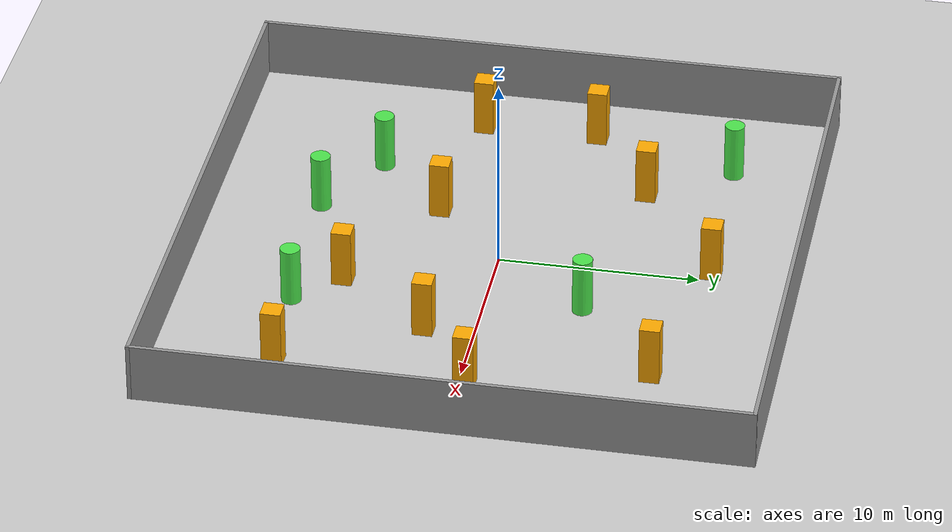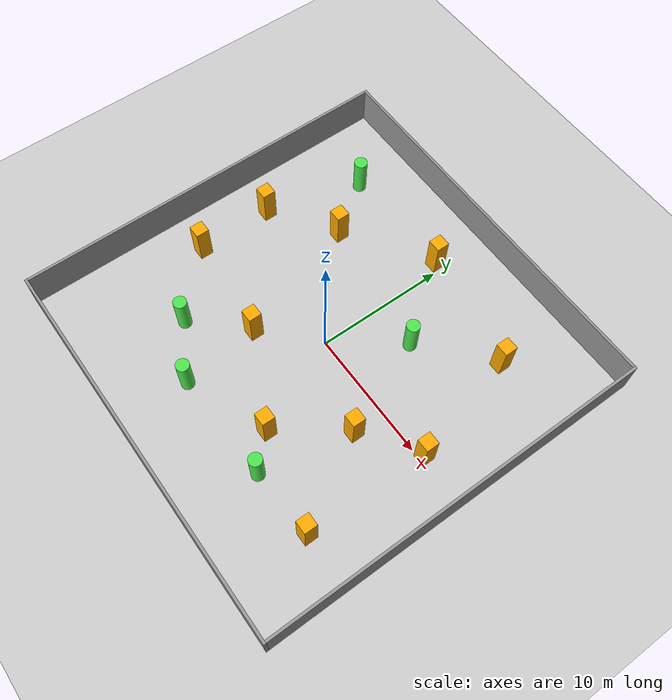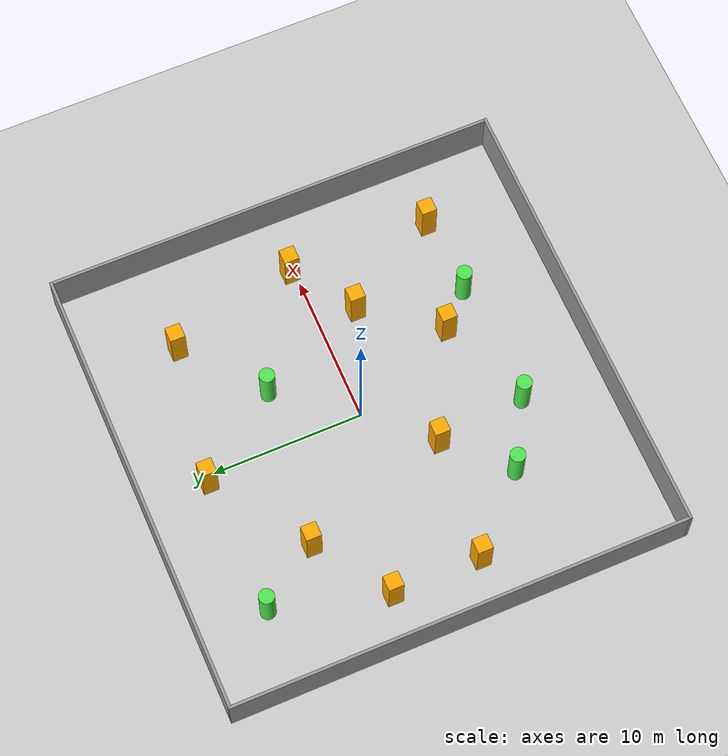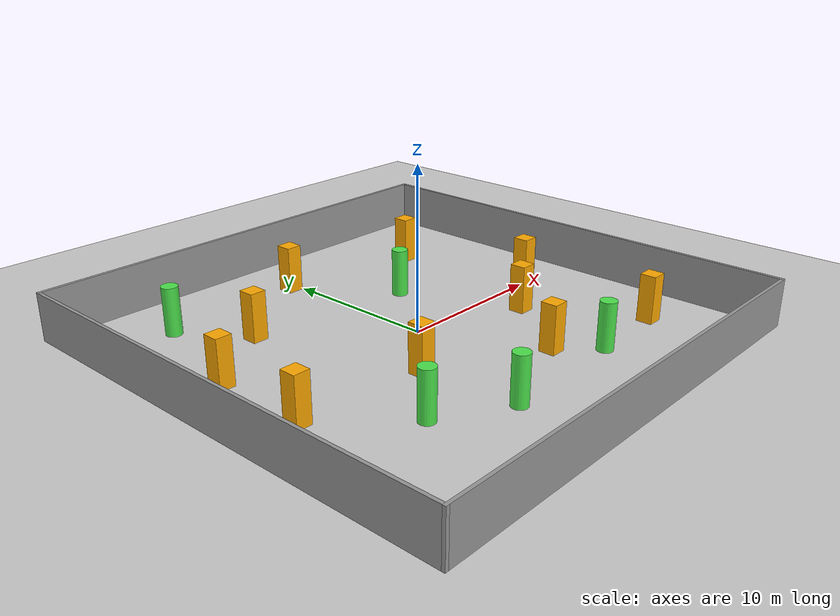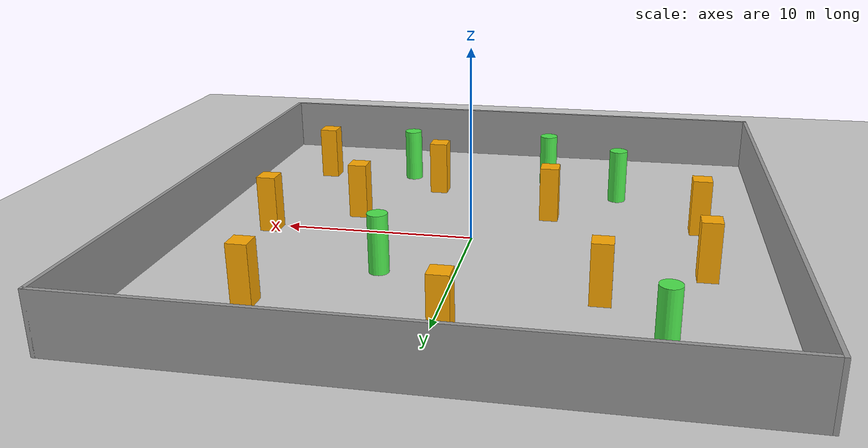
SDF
<sdf version="1.7">
 <world name="default">
  <light name="sun" type="directional">
   <pose>0 0 10 0 -0 0</pose>
   <diffuse>0.8 0.8 0.8 1</diffuse>
   <specular>0.2 0.2 0.2 1</specular>
   <attenuation>
    <range>1000</range>
    <constant>0.9</constant>
    <linear>0.01</linear>
    <quadratic>0.001</quadratic>
   </attenuation>
   <direction>-0.05 0.05 -0.9</direction>
   <spot><inner_angle>0</inner_angle><outer_angle>0</outer_angle><falloff>0</falloff></spot>
  </light>
  <model name="ground_plane">
   <static>1</static>
   <link name="link">
    <collision name="collision">
     <geometry><plane><normal>0 0 1</normal><size>100 100</size></plane></geometry>
     <surface>
      <contact><collide_bitmask>65535</collide_bitmask></contact>
      <friction><ode><mu>100</mu><mu2>50</mu2></ode></friction>
     </surface>
    </collision>
    <visual name="visual">
     <cast_shadows>0</cast_shadows>
     <geometry><plane><normal>0 0 1</normal><size>100 100</size></plane></geometry>
     <material>
      <script><uri>file://media/materials/scripts/gazebo.material</uri><name>Gazebo/Grey</name></script>
     </material>
    </visual>
   </link>
  </model>
  <gravity>0 0 -9.8</gravity>
  <magnetic_field>6e-06 2.3e-05 -4.2e-05</magnetic_field>
  <atmosphere type="adiabatic"/>
  <physics type="ode">
   <max_step_size>0.001</max_step_size>
   <real_time_factor>1</real_time_factor>
   <real_time_update_rate>1000</real_time_update_rate>
  </physics>
  <scene><ambient>0.4 0.4 0.4 1</ambient><background>0.7 0.7 0.7 1</background><shadows>1</shadows></scene>
  <spherical_coordinates>
   <surface_model>EARTH_WGS84</surface_model>
   <latitude_deg>0</latitude_deg>
   <longitude_deg>0</longitude_deg>
   <elevation>0</elevation>
   <heading_deg>0</heading_deg>
  </spherical_coordinates>
  <model name="Pillar_1x3">
   <link name="link_0">
    <inertial>
     <mass>1</mass>
     <inertia><ixx>0.145833</ixx><ixy>0</ixy><ixz>0</ixz><iyy>0.145833</iyy><iyz>0</iyz><izz>0.125</izz></inertia>
    </inertial>
    <pose>0 0 1.5 0 -0 0</pose>
    <kinematic>1</kinematic>
    <visual name="visual">
     <geometry><cylinder><radius>0.5</radius><length>3</length></cylinder></geometry>
     <material>
      <lighting>1</lighting>
      <script><uri>file://media/materials/scripts/gazebo.material</uri><name>Gazebo/Grey</name></script>
      <shader type="pixel"><normal_map>__default__</normal_map></shader>
      <ambient>0.3 0.9 0.3 1</ambient>
      <diffuse>0.7 0.7 0.7 1</diffuse>
      <specular>0.01 0.01 0.01 1</specular>
      <emissive>0 0 0 1</emissive>
     </material>
    </visual>
    <collision name="collision">
     <geometry><cylinder><radius>0.5</radius><length>3</length></cylinder></geometry>
     <surface>
      <friction>
       <ode><mu>1</mu><mu2>1</mu2><fdir1>0 0 0</fdir1><slip1>0</slip1><slip2>0</slip2></ode>
       <torsional>
        <coefficient>1</coefficient>
        <patch_radius>0</patch_radius>
        <surface_radius>0</surface_radius>
        <use_patch_radius>1</use_patch_radius>
        <ode><slip>0</slip></ode>
       </torsional>
      </friction>
      <bounce><restitution_coefficient>0</restitution_coefficient><threshold>1e+06</threshold></bounce>
      <contact>
       <collide_without_contact>0</collide_without_contact>
       <collide_without_contact_bitmask>1</collide_without_contact_bitmask>
       <collide_bitmask>1</collide_bitmask>
       <ode>
        <soft_cfm>0</soft_cfm>
        <soft_erp>0.2</soft_erp>
        <kp>1e+13</kp>
        <kd>1</kd>
        <max_vel>0.01</max_vel>
        <min_depth>0</min_depth>
       </ode>
       <bullet>
        <split_impulse>1</split_impulse>
        <split_impulse_penetration_threshold>-0.01</split_impulse_penetration_threshold>
        <soft_cfm>0</soft_cfm>
        <soft_erp>0.2</soft_erp>
        <kp>1e+13</kp>
        <kd>1</kd>
       </bullet>
      </contact>
     </surface>
    </collision>
   </link>
   <static>0</static>
   <pose>5.29199 -9.35902 0 0 -0 0</pose>
  </model>
  <model name="Pillar_1x3_clone">
   <link name="link_0">
    <inertial>
     <mass>1</mass>
     <inertia><ixx>0.145833</ixx><ixy>0</ixy><ixz>0</ixz><iyy>0.145833</iyy><iyz>0</iyz><izz>0.125</izz></inertia>
    </inertial>
    <pose>0 0 1.5 0 -0 0</pose>
    <kinematic>1</kinematic>
    <visual name="visual">
     <geometry><cylinder><radius>0.5</radius><length>3</length></cylinder></geometry>
     <material>
      <lighting>1</lighting>
      <script><uri>file://media/materials/scripts/gazebo.material</uri><name>Gazebo/Grey</name></script>
      <shader type="pixel"><normal_map>__default__</normal_map></shader>
      <ambient>0.3 0.9 0.3 1</ambient>
      <diffuse>0.7 0.7 0.7 1</diffuse>
      <specular>0.01 0.01 0.01 1</specular>
      <emissive>0 0 0 1</emissive>
     </material>
    </visual>
    <collision name="collision">
     <geometry><cylinder><radius>0.5</radius><length>3</length></cylinder></geometry>
     <surface>
      <friction>
       <ode><mu>1</mu><mu2>1</mu2><fdir1>0 0 0</fdir1><slip1>0</slip1><slip2>0</slip2></ode>
       <torsional>
        <coefficient>1</coefficient>
        <patch_radius>0</patch_radius>
        <surface_radius>0</surface_radius>
        <use_patch_radius>1</use_patch_radius>
        <ode><slip>0</slip></ode>
       </torsional>
      </friction>
      <bounce><restitution_coefficient>0</restitution_coefficient><threshold>1e+06</threshold></bounce>
      <contact>
       <collide_without_contact>0</collide_without_contact>
       <collide_without_contact_bitmask>1</collide_without_contact_bitmask>
       <collide_bitmask>1</collide_bitmask>
       <ode>
        <soft_cfm>0</soft_cfm>
        <soft_erp>0.2</soft_erp>
        <kp>1e+13</kp>
        <kd>1</kd>
        <max_vel>0.01</max_vel>
        <min_depth>0</min_depth>
       </ode>
       <bullet>
        <split_impulse>1</split_impulse>
        <split_impulse_penetration_threshold>-0.01</split_impulse_penetration_threshold>
        <soft_cfm>0</soft_cfm>
        <soft_erp>0.2</soft_erp>
        <kp>1e+13</kp>
        <kd>1</kd>
       </bullet>
      </contact>
     </surface>
    </collision>
   </link>
   <static>0</static>
   <pose>-7.33451 -7.2529 0 0 -0 0</pose>
  </model>
  <model name="Pillar_1x3_clone_0">
   <link name="link_0">
    <inertial>
     <mass>1</mass>
     <inertia><ixx>0.145833</ixx><ixy>0</ixy><ixz>0</ixz><iyy>0.145833</iyy><iyz>0</iyz><izz>0.125</izz></inertia>
    </inertial>
    <pose>0 0 1.5 0 -0 0</pose>
    <kinematic>1</kinematic>
    <visual name="visual">
     <geometry><cylinder><radius>0.5</radius><length>3</length></cylinder></geometry>
     <material>
      <lighting>1</lighting>
      <script><uri>file://media/materials/scripts/gazebo.material</uri><name>Gazebo/Grey</name></script>
      <shader type="pixel"><normal_map>__default__</normal_map></shader>
      <ambient>0.3 0.9 0.3 1</ambient>
      <diffuse>0.7 0.7 0.7 1</diffuse>
      <specular>0.01 0.01 0.01 1</specular>
      <emissive>0 0 0 1</emissive>
     </material>
    </visual>
    <collision name="collision">
     <geometry><cylinder><radius>0.5</radius><length>3</length></cylinder></geometry>
     <surface>
      <friction>
       <ode><mu>1</mu><mu2>1</mu2><fdir1>0 0 0</fdir1><slip1>0</slip1><slip2>0</slip2></ode>
       <torsional>
        <coefficient>1</coefficient>
        <patch_radius>0</patch_radius>
        <surface_radius>0</surface_radius>
        <use_patch_radius>1</use_patch_radius>
        <ode><slip>0</slip></ode>
       </torsional>
      </friction>
      <bounce><restitution_coefficient>0</restitution_coefficient><threshold>1e+06</threshold></bounce>
      <contact>
       <collide_without_contact>0</collide_without_contact>
       <collide_without_contact_bitmask>1</collide_without_contact_bitmask>
       <collide_bitmask>1</collide_bitmask>
       <ode>
        <soft_cfm>0</soft_cfm>
        <soft_erp>0.2</soft_erp>
        <kp>1e+13</kp>
        <kd>1</kd>
        <max_vel>0.01</max_vel>
        <min_depth>0</min_depth>
       </ode>
       <bullet>
        <split_impulse>1</split_impulse>
        <split_impulse_penetration_threshold>-0.01</split_impulse_penetration_threshold>
        <soft_cfm>0</soft_cfm>
        <soft_erp>0.2</soft_erp>
        <kp>1e+13</kp>
        <kd>1</kd>
       </bullet>
      </contact>
     </surface>
    </collision>
   </link>
   <static>0</static>
   <pose>-3.09344 -9.64731 0 0 -0 0</pose>
  </model>
  <model name="Pillar_1x3_clone_1">
   <link name="link_0">
    <inertial>
     <mass>1</mass>
     <inertia><ixx>0.145833</ixx><ixy>0</ixy><ixz>0</ixz><iyy>0.145833</iyy><iyz>0</iyz><izz>0.125</izz></inertia>
    </inertial>
    <pose>0 0 1.5 0 -0 0</pose>
    <kinematic>1</kinematic>
    <visual name="visual">
     <geometry><cylinder><radius>0.5</radius><length>3</length></cylinder></geometry>
     <material>
      <lighting>1</lighting>
      <script><uri>file://media/materials/scripts/gazebo.material</uri><name>Gazebo/Grey</name></script>
      <shader type="pixel"><normal_map>__default__</normal_map></shader>
      <ambient>0.3 0.9 0.3 1</ambient>
      <diffuse>0.7 0.7 0.7 1</diffuse>
      <specular>0.01 0.01 0.01 1</specular>
      <emissive>0 0 0 1</emissive>
     </material>
    </visual>
    <collision name="collision">
     <geometry><cylinder><radius>0.5</radius><length>3</length></cylinder></geometry>
     <surface>
      <friction>
       <ode><mu>1</mu><mu2>1</mu2><fdir1>0 0 0</fdir1><slip1>0</slip1><slip2>0</slip2></ode>
       <torsional>
        <coefficient>1</coefficient>
        <patch_radius>0</patch_radius>
        <surface_radius>0</surface_radius>
        <use_patch_radius>1</use_patch_radius>
        <ode><slip>0</slip></ode>
       </torsional>
      </friction>
      <bounce><restitution_coefficient>0</restitution_coefficient><threshold>1e+06</threshold></bounce>
      <contact>
       <collide_without_contact>0</collide_without_contact>
       <collide_without_contact_bitmask>1</collide_without_contact_bitmask>
       <collide_bitmask>1</collide_bitmask>
       <ode>
        <soft_cfm>0</soft_cfm>
        <soft_erp>0.2</soft_erp>
        <kp>1e+13</kp>
        <kd>1</kd>
        <max_vel>0.01</max_vel>
        <min_depth>0</min_depth>
       </ode>
       <bullet>
        <split_impulse>1</split_impulse>
        <split_impulse_penetration_threshold>-0.01</split_impulse_penetration_threshold>
        <soft_cfm>0</soft_cfm>
        <soft_erp>0.2</soft_erp>
        <kp>1e+13</kp>
        <kd>1</kd>
       </bullet>
      </contact>
     </surface>
    </collision>
   </link>
   <static>0</static>
   <pose>-9.69243 10.3073 0 0 -0 0</pose>
  </model>
  <model name="Pillar_1x3_clone_2">
   <link name="link_0">
    <inertial>
     <mass>1</mass>
     <inertia><ixx>0.145833</ixx><ixy>0</ixy><ixz>0</ixz><iyy>0.145833</iyy><iyz>0</iyz><izz>0.125</izz></inertia>
    </inertial>
    <pose>0 0 1.5 0 -0 0</pose>
    <kinematic>1</kinematic>
    <visual name="visual">
     <geometry><cylinder><radius>0.5</radius><length>3</length></cylinder></geometry>
     <material>
      <lighting>1</lighting>
      <script><uri>file://media/materials/scripts/gazebo.material</uri><name>Gazebo/Grey</name></script>
      <shader type="pixel"><normal_map>__default__</normal_map></shader>
      <ambient>0.3 0.9 0.3 1</ambient>
      <diffuse>0.7 0.7 0.7 1</diffuse>
      <specular>0.01 0.01 0.01 1</specular>
      <emissive>0 0 0 1</emissive>
     </material>
    </visual>
    <collision name="collision">
     <geometry><cylinder><radius>0.5</radius><length>3</length></cylinder></geometry>
     <surface>
      <friction>
       <ode><mu>1</mu><mu2>1</mu2><fdir1>0 0 0</fdir1><slip1>0</slip1><slip2>0</slip2></ode>
       <torsional>
        <coefficient>1</coefficient>
        <patch_radius>0</patch_radius>
        <surface_radius>0</surface_radius>
        <use_patch_radius>1</use_patch_radius>
        <ode><slip>0</slip></ode>
       </torsional>
      </friction>
      <bounce><restitution_coefficient>0</restitution_coefficient><threshold>1e+06</threshold></bounce>
      <contact>
       <collide_without_contact>0</collide_without_contact>
       <collide_without_contact_bitmask>1</collide_without_contact_bitmask>
       <collide_bitmask>1</collide_bitmask>
       <ode>
        <soft_cfm>0</soft_cfm>
        <soft_erp>0.2</soft_erp>
        <kp>1e+13</kp>
        <kd>1</kd>
        <max_vel>0.01</max_vel>
        <min_depth>0</min_depth>
       </ode>
       <bullet>
        <split_impulse>1</split_impulse>
        <split_impulse_penetration_threshold>-0.01</split_impulse_penetration_threshold>
        <soft_cfm>0</soft_cfm>
        <soft_erp>0.2</soft_erp>
        <kp>1e+13</kp>
        <kd>1</kd>
       </bullet>
      </contact>
     </surface>
    </collision>
   </link>
   <static>0</static>
   <pose>3.6287 4.8141 0 0 -0 0</pose>
  </model>
  <model name="Fence30">
   <pose>-0.170481 -0.124416 0 0 -0 0</pose>
   <link name="Wall_0">
    <collision name="Wall_0_Collision">
     <geometry><box><size>30.2 0.2 3</size></box></geometry>
     <pose>0 0 1.5 0 -0 0</pose>
    </collision>
    <visual name="Wall_0_Visual">
     <pose>0 0 1.5 0 -0 0</pose>
     <geometry><box><size>30.2 0.2 3</size></box></geometry>
     <material>
      <script><uri>file://media/materials/scripts/gazebo.material</uri><name>Gazebo/Grey</name></script>
      <ambient>1 1 1 1</ambient>
     </material>
     <meta><layer>0</layer></meta>
    </visual>
    <pose>0 -15 0 0 -0 3.14159</pose>
   </link>
   <link name="Wall_1">
    <collision name="Wall_1_Collision">
     <geometry><box><size>30.2 0.2 3</size></box></geometry>
     <pose>0 0 1.5 0 -0 0</pose>
    </collision>
    <visual name="Wall_1_Visual">
     <pose>0 0 1.5 0 -0 0</pose>
     <geometry><box><size>30.2 0.2 3</size></box></geometry>
     <material>
      <script><uri>file://media/materials/scripts/gazebo.material</uri><name>Gazebo/Grey</name></script>
      <ambient>1 1 1 1</ambient>
     </material>
     <meta><layer>0</layer></meta>
    </visual>
    <pose>-15 0 0 0 -0 1.5708</pose>
   </link>
   <link name="Wall_2">
    <collision name="Wall_2_Collision">
     <geometry><box><size>30.2 0.2 3</size></box></geometry>
     <pose>0 0 1.5 0 -0 0</pose>
    </collision>
    <visual name="Wall_2_Visual">
     <pose>0 0 1.5 0 -0 0</pose>
     <geometry><box><size>30.2 0.2 3</size></box></geometry>
     <material>
      <script><uri>file://media/materials/scripts/gazebo.material</uri><name>Gazebo/Grey</name></script>
      <ambient>1 1 1 1</ambient>
     </material>
     <meta><layer>0</layer></meta>
    </visual>
    <pose>0 15 0 0 -0 0</pose>
   </link>
   <link name="Wall_3">
    <collision name="Wall_3_Collision">
     <geometry><box><size>30.2 0.2 3</size></box></geometry>
     <pose>0 0 1.5 0 -0 0</pose>
    </collision>
    <visual name="Wall_3_Visual">
     <pose>0 0 1.5 0 -0 0</pose>
     <geometry><box><size>30.2 0.2 3</size></box></geometry>
     <material>
      <script><uri>file://media/materials/scripts/gazebo.material</uri><name>Gazebo/Grey</name></script>
      <ambient>1 1 1 1</ambient>
     </material>
     <meta><layer>0</layer></meta>
    </visual>
    <pose>15 0 0 0 -0 -1.5708</pose>
   </link>
   <static>1</static>
  </model>
  <model name="Box1x1x3">
   <link name="link_0">
    <inertial>
     <mass>1</mass>
     <inertia>
      <ixx>0.166667</ixx>
      <ixy>0</ixy>
      <ixz>0</ixz>
      <iyy>0.166667</iyy>
      <iyz>0</iyz>
      <izz>0.166667</izz>
     </inertia>
    </inertial>
    <pose>0 0 1.5 0 -0 0</pose>
    <kinematic>1</kinematic>
    <visual name="visual">
     <geometry><box><size>1 1 3</size></box></geometry>
     <material>
      <lighting>1</lighting>
      <script><uri>file://media/materials/scripts/gazebo.material</uri><name>Gazebo/Grey</name></script>
      <shader type="pixel"><normal_map>__default__</normal_map></shader>
      <ambient>1 0.667 0 1</ambient>
      <diffuse>0.7 0.7 0.7 1</diffuse>
      <specular>0.01 0.01 0.01 1</specular>
      <emissive>0 0 0 1</emissive>
     </material>
    </visual>
    <collision name="collision">
     <geometry><box><size>1 1 3</size></box></geometry>
     <surface>
      <friction>
       <ode><mu>1</mu><mu2>1</mu2><fdir1>0 0 0</fdir1><slip1>0</slip1><slip2>0</slip2></ode>
       <torsional>
        <coefficient>1</coefficient>
        <patch_radius>0</patch_radius>
        <surface_radius>0</surface_radius>
        <use_patch_radius>1</use_patch_radius>
        <ode><slip>0</slip></ode>
       </torsional>
      </friction>
      <bounce><restitution_coefficient>0</restitution_coefficient><threshold>1e+06</threshold></bounce>
      <contact>
       <collide_without_contact>0</collide_without_contact>
       <collide_without_contact_bitmask>1</collide_without_contact_bitmask>
       <collide_bitmask>1</collide_bitmask>
       <ode>
        <soft_cfm>0</soft_cfm>
        <soft_erp>0.2</soft_erp>
        <kp>1e+13</kp>
        <kd>1</kd>
        <max_vel>0.01</max_vel>
        <min_depth>0</min_depth>
       </ode>
       <bullet>
        <split_impulse>1</split_impulse>
        <split_impulse_penetration_threshold>-0.01</split_impulse_penetration_threshold>
        <soft_cfm>0</soft_cfm>
        <soft_erp>0.2</soft_erp>
        <kp>1e+13</kp>
        <kd>1</kd>
       </bullet>
      </contact>
     </surface>
    </collision>
   </link>
   <static>0</static>
   <pose>6.70589 -2.46473 0 0 -0 0</pose>
  </model>
  <model name="Box1x1x3_clone">
   <link name="link_0">
    <inertial>
     <mass>1</mass>
     <inertia>
      <ixx>0.166667</ixx>
      <ixy>0</ixy>
      <ixz>0</ixz>
      <iyy>0.166667</iyy>
      <iyz>0</iyz>
      <izz>0.166667</izz>
     </inertia>
    </inertial>
    <pose>0 0 1.5 0 -0 0</pose>
    <kinematic>1</kinematic>
    <visual name="visual">
     <geometry><box><size>1 1 3</size></box></geometry>
     <material>
      <lighting>1</lighting>
      <script><uri>file://media/materials/scripts/gazebo.material</uri><name>Gazebo/Grey</name></script>
      <shader type="pixel"><normal_map>__default__</normal_map></shader>
      <ambient>1 0.667 0 1</ambient>
      <diffuse>0.7 0.7 0.7 1</diffuse>
      <specular>0.01 0.01 0.01 1</specular>
      <emissive>0 0 0 1</emissive>
     </material>
    </visual>
    <collision name="collision">
     <geometry><box><size>1 1 3</size></box></geometry>
     <surface>
      <friction>
       <ode><mu>1</mu><mu2>1</mu2><fdir1>0 0 0</fdir1><slip1>0</slip1><slip2>0</slip2></ode>
       <torsional>
        <coefficient>1</coefficient>
        <patch_radius>0</patch_radius>
        <surface_radius>0</surface_radius>
        <use_patch_radius>1</use_patch_radius>
        <ode><slip>0</slip></ode>
       </torsional>
      </friction>
      <bounce><restitution_coefficient>0</restitution_coefficient><threshold>1e+06</threshold></bounce>
      <contact>
       <collide_without_contact>0</collide_without_contact>
       <collide_without_contact_bitmask>1</collide_without_contact_bitmask>
       <collide_bitmask>1</collide_bitmask>
       <ode>
        <soft_cfm>0</soft_cfm>
        <soft_erp>0.2</soft_erp>
        <kp>1e+13</kp>
        <kd>1</kd>
        <max_vel>0.01</max_vel>
        <min_depth>0</min_depth>
       </ode>
       <bullet>
        <split_impulse>1</split_impulse>
        <split_impulse_penetration_threshold>-0.01</split_impulse_penetration_threshold>
        <soft_cfm>0</soft_cfm>
        <soft_erp>0.2</soft_erp>
        <kp>1e+13</kp>
        <kd>1</kd>
       </bullet>
      </contact>
     </surface>
    </collision>
   </link>
   <static>0</static>
   <pose>-3.72685 -3.65201 0 0 -0 0</pose>
  </model>
  <model name="Box1x1x3_clone_0">
   <link name="link_0">
    <inertial>
     <mass>1</mass>
     <inertia>
      <ixx>0.166667</ixx>
      <ixy>0</ixy>
      <ixz>0</ixz>
      <iyy>0.166667</iyy>
      <iyz>0</iyz>
      <izz>0.166667</izz>
     </inertia>
    </inertial>
    <pose>0 0 1.5 0 -0 0</pose>
    <kinematic>1</kinematic>
    <visual name="visual">
     <geometry><box><size>1 1 3</size></box></geometry>
     <material>
      <lighting>1</lighting>
      <script><uri>file://media/materials/scripts/gazebo.material</uri><name>Gazebo/Grey</name></script>
      <shader type="pixel"><normal_map>__default__</normal_map></shader>
      <ambient>1 0.667 0 1</ambient>
      <diffuse>0.7 0.7 0.7 1</diffuse>
      <specular>0.01 0.01 0.01 1</specular>
      <emissive>0 0 0 1</emissive>
     </material>
    </visual>
    <collision name="collision">
     <geometry><box><size>1 1 3</size></box></geometry>
     <surface>
      <friction>
       <ode><mu>1</mu><mu2>1</mu2><fdir1>0 0 0</fdir1><slip1>0</slip1><slip2>0</slip2></ode>
       <torsional>
        <coefficient>1</coefficient>
        <patch_radius>0</patch_radius>
        <surface_radius>0</surface_radius>
        <use_patch_radius>1</use_patch_radius>
        <ode><slip>0</slip></ode>
       </torsional>
      </friction>
      <bounce><restitution_coefficient>0</restitution_coefficient><threshold>1e+06</threshold></bounce>
      <contact>
       <collide_without_contact>0</collide_without_contact>
       <collide_without_contact_bitmask>1</collide_without_contact_bitmask>
       <collide_bitmask>1</collide_bitmask>
       <ode>
        <soft_cfm>0</soft_cfm>
        <soft_erp>0.2</soft_erp>
        <kp>1e+13</kp>
        <kd>1</kd>
        <max_vel>0.01</max_vel>
        <min_depth>0</min_depth>
       </ode>
       <bullet>
        <split_impulse>1</split_impulse>
        <split_impulse_penetration_threshold>-0.01</split_impulse_penetration_threshold>
        <soft_cfm>0</soft_cfm>
        <soft_erp>0.2</soft_erp>
        <kp>1e+13</kp>
        <kd>1</kd>
       </bullet>
      </contact>
     </surface>
    </collision>
   </link>
   <static>0</static>
   <pose>-11.7465 -2.89077 0 0 -0 0</pose>
  </model>
  <model name="Box1x1x3_clone_1">
   <link name="link_0">
    <inertial>
     <mass>1</mass>
     <inertia>
      <ixx>0.166667</ixx>
      <ixy>0</ixy>
      <ixz>0</ixz>
      <iyy>0.166667</iyy>
      <iyz>0</iyz>
      <izz>0.166667</izz>
     </inertia>
    </inertial>
    <pose>0 0 1.5 0 -0 0</pose>
    <kinematic>1</kinematic>
    <visual name="visual">
     <geometry><box><size>1 1 3</size></box></geometry>
     <material>
      <lighting>1</lighting>
      <script><uri>file://media/materials/scripts/gazebo.material</uri><name>Gazebo/Grey</name></script>
      <shader type="pixel"><normal_map>__default__</normal_map></shader>
      <ambient>1 0.667 0 1</ambient>
      <diffuse>0.7 0.7 0.7 1</diffuse>
      <specular>0.01 0.01 0.01 1</specular>
      <emissive>0 0 0 1</emissive>
     </material>
    </visual>
    <collision name="collision">
     <geometry><box><size>1 1 3</size></box></geometry>
     <surface>
      <friction>
       <ode><mu>1</mu><mu2>1</mu2><fdir1>0 0 0</fdir1><slip1>0</slip1><slip2>0</slip2></ode>
       <torsional>
        <coefficient>1</coefficient>
        <patch_radius>0</patch_radius>
        <surface_radius>0</surface_radius>
        <use_patch_radius>1</use_patch_radius>
        <ode><slip>0</slip></ode>
       </torsional>
      </friction>
      <bounce><restitution_coefficient>0</restitution_coefficient><threshold>1e+06</threshold></bounce>
      <contact>
       <collide_without_contact>0</collide_without_contact>
       <collide_without_contact_bitmask>1</collide_without_contact_bitmask>
       <collide_bitmask>1</collide_bitmask>
       <ode>
        <soft_cfm>0</soft_cfm>
        <soft_erp>0.2</soft_erp>
        <kp>1e+13</kp>
        <kd>1</kd>
        <max_vel>0.01</max_vel>
        <min_depth>0</min_depth>
       </ode>
       <bullet>
        <split_impulse>1</split_impulse>
        <split_impulse_penetration_threshold>-0.01</split_impulse_penetration_threshold>
        <soft_cfm>0</soft_cfm>
        <soft_erp>0.2</soft_erp>
        <kp>1e+13</kp>
        <kd>1</kd>
       </bullet>
      </contact>
     </surface>
    </collision>
   </link>
   <static>0</static>
   <pose>-11.791 2.97732 0 0 -0 0</pose>
  </model>
  <model name="Box1x1x3_clone_2">
   <link name="link_0">
    <inertial>
     <mass>1</mass>
     <inertia>
      <ixx>0.166667</ixx>
      <ixy>0</ixy>
      <ixz>0</ixz>
      <iyy>0.166667</iyy>
      <iyz>0</iyz>
      <izz>0.166667</izz>
     </inertia>
    </inertial>
    <pose>0 0 1.5 0 -0 0</pose>
    <kinematic>1</kinematic>
    <visual name="visual">
     <geometry><box><size>1 1 3</size></box></geometry>
     <material>
      <lighting>1</lighting>
      <script><uri>file://media/materials/scripts/gazebo.material</uri><name>Gazebo/Grey</name></script>
      <shader type="pixel"><normal_map>__default__</normal_map></shader>
      <ambient>1 0.667 0 1</ambient>
      <diffuse>0.7 0.7 0.7 1</diffuse>
      <specular>0.01 0.01 0.01 1</specular>
      <emissive>0 0 0 1</emissive>
     </material>
    </visual>
    <collision name="collision">
     <geometry><box><size>1 1 3</size></box></geometry>
     <surface>
      <friction>
       <ode><mu>1</mu><mu2>1</mu2><fdir1>0 0 0</fdir1><slip1>0</slip1><slip2>0</slip2></ode>
       <torsional>
        <coefficient>1</coefficient>
        <patch_radius>0</patch_radius>
        <surface_radius>0</surface_radius>
        <use_patch_radius>1</use_patch_radius>
        <ode><slip>0</slip></ode>
       </torsional>
      </friction>
      <bounce><restitution_coefficient>0</restitution_coefficient><threshold>1e+06</threshold></bounce>
      <contact>
       <collide_without_contact>0</collide_without_contact>
       <collide_without_contact_bitmask>1</collide_without_contact_bitmask>
       <collide_bitmask>1</collide_bitmask>
       <ode>
        <soft_cfm>0</soft_cfm>
        <soft_erp>0.2</soft_erp>
        <kp>1e+13</kp>
        <kd>1</kd>
        <max_vel>0.01</max_vel>
        <min_depth>0</min_depth>
       </ode>
       <bullet>
        <split_impulse>1</split_impulse>
        <split_impulse_penetration_threshold>-0.01</split_impulse_penetration_threshold>
        <soft_cfm>0</soft_cfm>
        <soft_erp>0.2</soft_erp>
        <kp>1e+13</kp>
        <kd>1</kd>
       </bullet>
      </contact>
     </surface>
    </collision>
   </link>
   <static>0</static>
   <pose>-6.93116 6.27845 0 0 -0 0</pose>
  </model>
  <model name="Box1x1x3_clone_3">
   <link name="link_0">
    <inertial>
     <mass>1</mass>
     <inertia>
      <ixx>0.166667</ixx>
      <ixy>0</ixy>
      <ixz>0</ixz>
      <iyy>0.166667</iyy>
      <iyz>0</iyz>
      <izz>0.166667</izz>
     </inertia>
    </inertial>
    <pose>0 0 1.5 0 -0 0</pose>
    <kinematic>1</kinematic>
    <visual name="visual">
     <geometry><box><size>1 1 3</size></box></geometry>
     <material>
      <lighting>1</lighting>
      <script><uri>file://media/materials/scripts/gazebo.material</uri><name>Gazebo/Grey</name></script>
      <shader type="pixel"><normal_map>__default__</normal_map></shader>
      <ambient>1 0.667 0 1</ambient>
      <diffuse>0.7 0.7 0.7 1</diffuse>
      <specular>0.01 0.01 0.01 1</specular>
      <emissive>0 0 0 1</emissive>
     </material>
    </visual>
    <collision name="collision">
     <geometry><box><size>1 1 3</size></box></geometry>
     <surface>
      <friction>
       <ode><mu>1</mu><mu2>1</mu2><fdir1>0 0 0</fdir1><slip1>0</slip1><slip2>0</slip2></ode>
       <torsional>
        <coefficient>1</coefficient>
        <patch_radius>0</patch_radius>
        <surface_radius>0</surface_radius>
        <use_patch_radius>1</use_patch_radius>
        <ode><slip>0</slip></ode>
       </torsional>
      </friction>
      <bounce><restitution_coefficient>0</restitution_coefficient><threshold>1e+06</threshold></bounce>
      <contact>
       <collide_without_contact>0</collide_without_contact>
       <collide_without_contact_bitmask>1</collide_without_contact_bitmask>
       <collide_bitmask>1</collide_bitmask>
       <ode>
        <soft_cfm>0</soft_cfm>
        <soft_erp>0.2</soft_erp>
        <kp>1e+13</kp>
        <kd>1</kd>
        <max_vel>0.01</max_vel>
        <min_depth>0</min_depth>
       </ode>
       <bullet>
        <split_impulse>1</split_impulse>
        <split_impulse_penetration_threshold>-0.01</split_impulse_penetration_threshold>
        <soft_cfm>0</soft_cfm>
        <soft_erp>0.2</soft_erp>
        <kp>1e+13</kp>
        <kd>1</kd>
       </bullet>
      </contact>
     </surface>
    </collision>
   </link>
   <static>0</static>
   <pose>-0.591083 10.5417 0 0 -0 0</pose>
  </model>
  <model name="Box1x1x3_clone_4">
   <link name="link_0">
    <inertial>
     <mass>1</mass>
     <inertia>
      <ixx>0.166667</ixx>
      <ixy>0</ixy>
      <ixz>0</ixz>
      <iyy>0.166667</iyy>
      <iyz>0</iyz>
      <izz>0.166667</izz>
     </inertia>
    </inertial>
    <pose>0 0 1.5 0 -0 0</pose>
    <kinematic>1</kinematic>
    <visual name="visual">
     <geometry><box><size>1 1 3</size></box></geometry>
     <material>
      <lighting>1</lighting>
      <script><uri>file://media/materials/scripts/gazebo.material</uri><name>Gazebo/Grey</name></script>
      <shader type="pixel"><normal_map>__default__</normal_map></shader>
      <ambient>1 0.667 0 1</ambient>
      <diffuse>0.7 0.7 0.7 1</diffuse>
      <specular>0.01 0.01 0.01 1</specular>
      <emissive>0 0 0 1</emissive>
     </material>
    </visual>
    <collision name="collision">
     <geometry><box><size>1 1 3</size></box></geometry>
     <surface>
      <friction>
       <ode><mu>1</mu><mu2>1</mu2><fdir1>0 0 0</fdir1><slip1>0</slip1><slip2>0</slip2></ode>
       <torsional>
        <coefficient>1</coefficient>
        <patch_radius>0</patch_radius>
        <surface_radius>0</surface_radius>
        <use_patch_radius>1</use_patch_radius>
        <ode><slip>0</slip></ode>
       </torsional>
      </friction>
      <bounce><restitution_coefficient>0</restitution_coefficient><threshold>1e+06</threshold></bounce>
      <contact>
       <collide_without_contact>0</collide_without_contact>
       <collide_without_contact_bitmask>1</collide_without_contact_bitmask>
       <collide_bitmask>1</collide_bitmask>
       <ode>
        <soft_cfm>0</soft_cfm>
        <soft_erp>0.2</soft_erp>
        <kp>1e+13</kp>
        <kd>1</kd>
        <max_vel>0.01</max_vel>
        <min_depth>0</min_depth>
       </ode>
       <bullet>
        <split_impulse>1</split_impulse>
        <split_impulse_penetration_threshold>-0.01</split_impulse_penetration_threshold>
        <soft_cfm>0</soft_cfm>
        <soft_erp>0.2</soft_erp>
        <kp>1e+13</kp>
        <kd>1</kd>
       </bullet>
      </contact>
     </surface>
    </collision>
   </link>
   <static>0</static>
   <pose>8.59781 8.97305 0 0 -0 0</pose>
  </model>
  <model name="Box1x1x3_clone_5">
   <link name="link_0">
    <inertial>
     <mass>1</mass>
     <inertia>
      <ixx>0.166667</ixx>
      <ixy>0</ixy>
      <ixz>0</ixz>
      <iyy>0.166667</iyy>
      <iyz>0</iyz>
      <izz>0.166667</izz>
     </inertia>
    </inertial>
    <pose>0 0 1.5 0 -0 0</pose>
    <kinematic>1</kinematic>
    <visual name="visual">
     <geometry><box><size>1 1 3</size></box></geometry>
     <material>
      <lighting>1</lighting>
      <script><uri>file://media/materials/scripts/gazebo.material</uri><name>Gazebo/Grey</name></script>
      <shader type="pixel"><normal_map>__default__</normal_map></shader>
      <ambient>1 0.667 0 1</ambient>
      <diffuse>0.7 0.7 0.7 1</diffuse>
      <specular>0.01 0.01 0.01 1</specular>
      <emissive>0 0 0 1</emissive>
     </material>
    </visual>
    <collision name="collision">
     <geometry><box><size>1 1 3</size></box></geometry>
     <surface>
      <friction>
       <ode><mu>1</mu><mu2>1</mu2><fdir1>0 0 0</fdir1><slip1>0</slip1><slip2>0</slip2></ode>
       <torsional>
        <coefficient>1</coefficient>
        <patch_radius>0</patch_radius>
        <surface_radius>0</surface_radius>
        <use_patch_radius>1</use_patch_radius>
        <ode><slip>0</slip></ode>
       </torsional>
      </friction>
      <bounce><restitution_coefficient>0</restitution_coefficient><threshold>1e+06</threshold></bounce>
      <contact>
       <collide_without_contact>0</collide_without_contact>
       <collide_without_contact_bitmask>1</collide_without_contact_bitmask>
       <collide_bitmask>1</collide_bitmask>
       <ode>
        <soft_cfm>0</soft_cfm>
        <soft_erp>0.2</soft_erp>
        <kp>1e+13</kp>
        <kd>1</kd>
        <max_vel>0.01</max_vel>
        <min_depth>0</min_depth>
       </ode>
       <bullet>
        <split_impulse>1</split_impulse>
        <split_impulse_penetration_threshold>-0.01</split_impulse_penetration_threshold>
        <soft_cfm>0</soft_cfm>
        <soft_erp>0.2</soft_erp>
        <kp>1e+13</kp>
        <kd>1</kd>
       </bullet>
      </contact>
     </surface>
    </collision>
   </link>
   <static>0</static>
   <pose>10.5558 -9.07591 0 0 -0 0</pose>
  </model>
  <model name="Box1x1x3_clone_6">
   <link name="link_0">
    <inertial>
     <mass>1</mass>
     <inertia>
      <ixx>0.166667</ixx>
      <ixy>0</ixy>
      <ixz>0</ixz>
      <iyy>0.166667</iyy>
      <iyz>0</iyz>
      <izz>0.166667</izz>
     </inertia>
    </inertial>
    <pose>0 0 1.5 0 -0 0</pose>
    <kinematic>1</kinematic>
    <visual name="visual">
     <geometry><box><size>1 1 3</size></box></geometry>
     <material>
      <lighting>1</lighting>
      <script><uri>file://media/materials/scripts/gazebo.material</uri><name>Gazebo/Grey</name></script>
      <shader type="pixel"><normal_map>__default__</normal_map></shader>
      <ambient>1 0.667 0 1</ambient>
      <diffuse>0.7 0.7 0.7 1</diffuse>
      <specular>0.01 0.01 0.01 1</specular>
      <emissive>0 0 0 1</emissive>
     </material>
    </visual>
    <collision name="collision">
     <geometry><box><size>1 1 3</size></box></geometry>
     <surface>
      <friction>
       <ode><mu>1</mu><mu2>1</mu2><fdir1>0 0 0</fdir1><slip1>0</slip1><slip2>0</slip2></ode>
       <torsional>
        <coefficient>1</coefficient>
        <patch_radius>0</patch_radius>
        <surface_radius>0</surface_radius>
        <use_patch_radius>1</use_patch_radius>
        <ode><slip>0</slip></ode>
       </torsional>
      </friction>
      <bounce><restitution_coefficient>0</restitution_coefficient><threshold>1e+06</threshold></bounce>
      <contact>
       <collide_without_contact>0</collide_without_contact>
       <collide_without_contact_bitmask>1</collide_without_contact_bitmask>
       <collide_bitmask>1</collide_bitmask>
       <ode>
        <soft_cfm>0</soft_cfm>
        <soft_erp>0.2</soft_erp>
        <kp>1e+13</kp>
        <kd>1</kd>
        <max_vel>0.01</max_vel>
        <min_depth>0</min_depth>
       </ode>
       <bullet>
        <split_impulse>1</split_impulse>
        <split_impulse_penetration_threshold>-0.01</split_impulse_penetration_threshold>
        <soft_cfm>0</soft_cfm>
        <soft_erp>0.2</soft_erp>
        <kp>1e+13</kp>
        <kd>1</kd>
       </bullet>
      </contact>
     </surface>
    </collision>
   </link>
   <static>0</static>
   <pose>3.16226 -7.20256 0 0 -0 0</pose>
  </model>
  <model name="Box1x1x3_clone_7">
   <link name="link_0">
    <inertial>
     <mass>1</mass>
     <inertia>
      <ixx>0.166667</ixx>
      <ixy>0</ixy>
      <ixz>0</ixz>
      <iyy>0.166667</iyy>
      <iyz>0</iyz>
      <izz>0.166667</izz>
     </inertia>
    </inertial>
    <pose>0 0 1.5 0 -0 0</pose>
    <kinematic>1</kinematic>
    <visual name="visual">
     <geometry><box><size>1 1 3</size></box></geometry>
     <material>
      <lighting>1</lighting>
      <script><uri>file://media/materials/scripts/gazebo.material</uri><name>Gazebo/Grey</name></script>
      <shader type="pixel"><normal_map>__default__</normal_map></shader>
      <ambient>1 0.667 0 1</ambient>
      <diffuse>0.7 0.7 0.7 1</diffuse>
      <specular>0.01 0.01 0.01 1</specular>
      <emissive>0 0 0 1</emissive>
     </material>
    </visual>
    <collision name="collision">
     <geometry><box><size>1 1 3</size></box></geometry>
     <surface>
      <friction>
       <ode><mu>1</mu><mu2>1</mu2><fdir1>0 0 0</fdir1><slip1>0</slip1><slip2>0</slip2></ode>
       <torsional>
        <coefficient>1</coefficient>
        <patch_radius>0</patch_radius>
        <surface_radius>0</surface_radius>
        <use_patch_radius>1</use_patch_radius>
        <ode><slip>0</slip></ode>
       </torsional>
      </friction>
      <bounce><restitution_coefficient>0</restitution_coefficient><threshold>1e+06</threshold></bounce>
      <contact>
       <collide_without_contact>0</collide_without_contact>
       <collide_without_contact_bitmask>1</collide_without_contact_bitmask>
       <collide_bitmask>1</collide_bitmask>
       <ode>
        <soft_cfm>0</soft_cfm>
        <soft_erp>0.2</soft_erp>
        <kp>1e+13</kp>
        <kd>1</kd>
        <max_vel>0.01</max_vel>
        <min_depth>0</min_depth>
       </ode>
       <bullet>
        <split_impulse>1</split_impulse>
        <split_impulse_penetration_threshold>-0.01</split_impulse_penetration_threshold>
        <soft_cfm>0</soft_cfm>
        <soft_erp>0.2</soft_erp>
        <kp>1e+13</kp>
        <kd>1</kd>
       </bullet>
      </contact>
     </surface>
    </collision>
   </link>
   <static>0</static>
   <pose>10.8082 0.350067 0 0 -0 0</pose>
  </model>
 </world>
</sdf>
